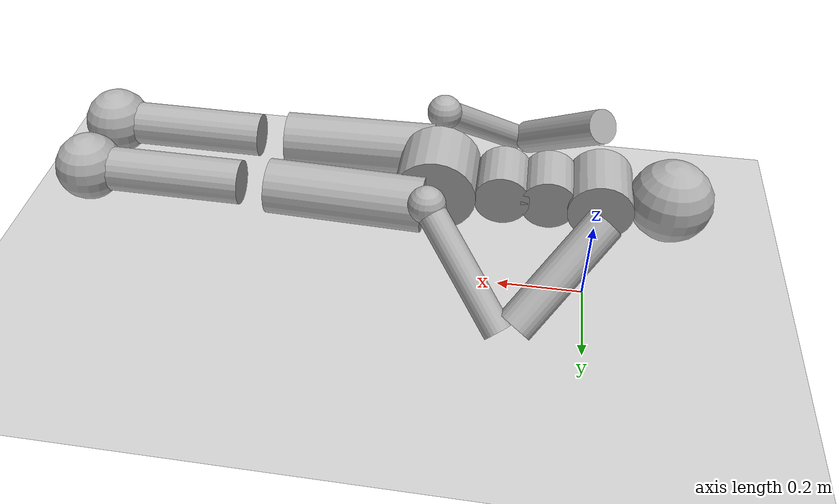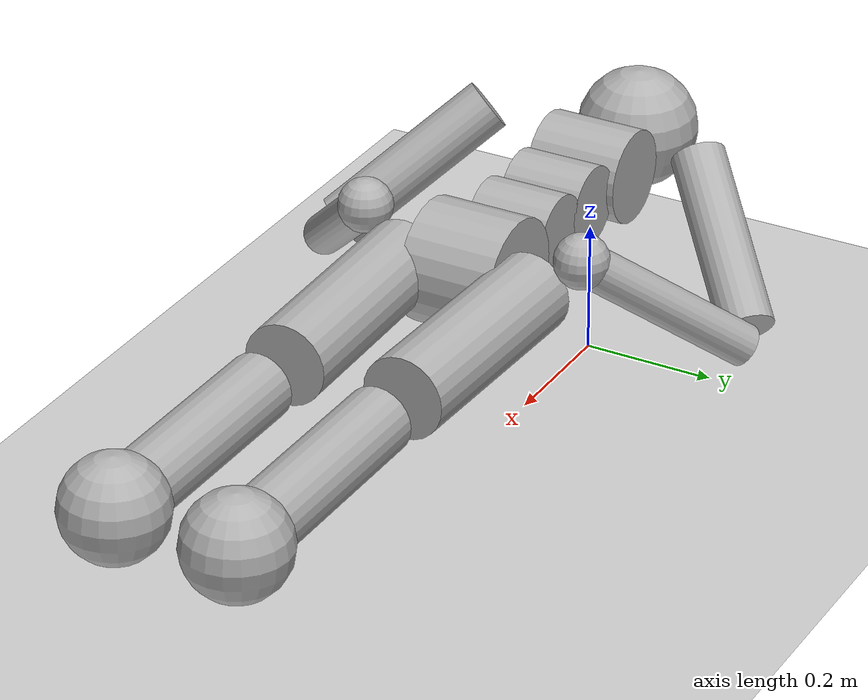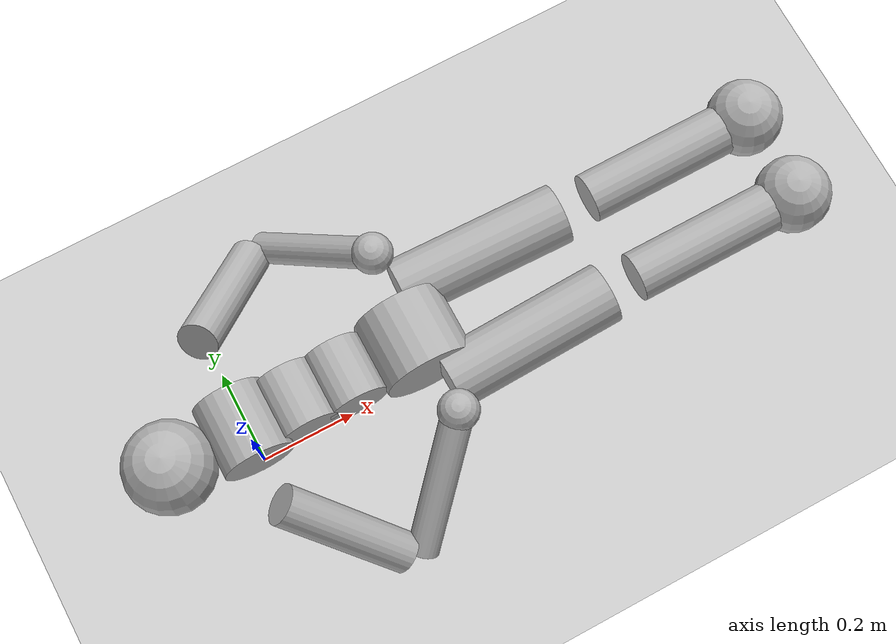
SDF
<?xml version="1.0" ?>
<sdf version="1.8">
  <world name="humanoidstandup">
    <physics name="10ms" type="ignored">
      <max_step_size>0.01</max_step_size>
      <real_time_update_rate>0</real_time_update_rate>
    </physics>
    <plugin filename="gz-sim-physics-system"           name="gz::sim::systems::Physics"/>
    <plugin filename="gz-sim-contact-system"           name="gz::sim::systems::Contact"/>
    <plugin filename="gz-sim-sensors-system"           name="gz::sim::systems::Sensors">
      <render_engine>ogre2</render_engine>
    </plugin>
    <plugin filename="gz-sim-scene-broadcaster-system" name="gz::sim::systems::SceneBroadcaster"/>
    <plugin filename="gz-sim-user-commands-system"     name="gz::sim::systems::UserCommands"/>

    <plugin
      filename="gz-sim-python-system-loader-system"
      name="gz::sim::systems::PythonSystemLoader">
      <module_name>humanoidstandup_learner</module_name>
      <agent_name>humanoidstandup</agent_name>
      <frame_skip>5</frame_skip>
    </plugin>

    <light name="sun" type="directional">
      <cast_shadows>true</cast_shadows>
      <pose>0 0 10 0 0 0</pose>
      <diffuse>0.8 0.8 0.8 1</diffuse>
      <specular>0.2 0.2 0.2 1</specular>
      <direction>-0.5 0.1 -0.9</direction>
    </light>

    <model name="ground_plane">
      <static>true</static>
      <link name="link">
        <collision name="collision">
          <geometry><plane><normal>0 0 1</normal><size>100 100</size></plane></geometry>
        </collision>
        <visual name="visual">
          <geometry><plane><normal>0 0 1</normal><size>100 100</size></plane></geometry>
          <material>
            <ambient>0.8 0.8 0.8 1</ambient>
            <diffuse>0.8 0.8 0.8 1</diffuse>
            <specular>0.8 0.8 0.8 1</specular>
          </material>
        </visual>
      </link>
    </model>

    <model name="humanoidstandup">
      <pose>0 0 0.3 0 0 0</pose>
      <include merge="true">
        <uri>package://gazebo_gymnasium_resources/models/humanoidstandup</uri>
      </include>
    </model>
  </world>
</sdf>

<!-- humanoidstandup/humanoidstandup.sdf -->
<sdf version='1.11'>
  <model name='humanoidstandup'>
    <link name='torso'>
      <inertial>
        <pose>0.109999987650802 0 0 0 0 0</pose>
        <mass>8.9074609999999996</mass>
        <inertia>
          <ixx>0.082250001000000003</ixx>
          <ixy>0</ixy>
          <ixz>0</ixz>
          <iyy>0.1488300130999986</iyy>
          <iyz>0</iyz>
          <izz>0.18297001309999861</izz>
        </inertia>
      </inertial>
      <collision name='torso_collision'>
        <pose>0 0 0 -1.5708 0 0</pose>
        <geometry>
          <cylinder>
            <length>0.14000000000000001</length>
            <radius>0.070000000000000007</radius>
          </cylinder>
        </geometry>
      </collision>
      <visual name='torso_visual'>
        <pose>0 0 0 -1.5708 0 0</pose>
        <geometry>
          <cylinder>
            <length>0.14000000000000001</length>
            <radius>0.070000000000000007</radius>
          </cylinder>
        </geometry>
              <material>
          <ambient>0.5 0.5 0.5 1</ambient>
          <diffuse>0.7 0.7 0.7 1</diffuse>
          <specular>0.1 0.1 0.1 1</specular>
        </material>
      </visual>
      <collision name='torso_collision_1'>
        <pose>-0.14999999999999999 0 0 0 0 0</pose>
        <geometry>
          <sphere>
            <radius>0.089999999999999997</radius>
          </sphere>
        </geometry>
      </collision>
      <visual name='torso_1_visual'>
        <pose>-0.14999999999999999 0 0 0 0 0</pose>
        <geometry>
          <sphere>
            <radius>0.089999999999999997</radius>
          </sphere>
        </geometry>
              <material>
          <ambient>0.5 0.5 0.5 1</ambient>
          <diffuse>0.7 0.7 0.7 1</diffuse>
          <specular>0.1 0.1 0.1 1</specular>
        </material>
      </visual>
      <collision name='torso_collision_2'>
        <pose>0.11 0 0 -1.5708 0 0</pose>
        <geometry>
          <cylinder>
            <length>0.12</length>
            <radius>0.059999999999999998</radius>
          </cylinder>
        </geometry>
      </collision>
      <visual name='torso_2_visual'>
        <pose>0.11 0 0 -1.5708 0 0</pose>
        <geometry>
          <cylinder>
            <length>0.12</length>
            <radius>0.059999999999999998</radius>
          </cylinder>
        </geometry>
              <material>
          <ambient>0.5 0.5 0.5 1</ambient>
          <diffuse>0.7 0.7 0.7 1</diffuse>
          <specular>0.1 0.1 0.1 1</specular>
        </material>
      </visual>
    </link>
    <joint name='abdomen_z' type='revolute'>
      <pose relative_to='torso'>0.20974000000000001 0 0.065000000000000002 0 -0.0039999999999999983 0</pose>
      <parent>torso</parent>
      <child>link1_2</child>
      <axis>
        <xyz>0 0 1</xyz>
        <limit>
          <lower>-0.78539999999999999</lower>
          <upper>0.78539999999999999</upper>
          <effort>0</effort>
          <velocity>0</velocity>
        </limit>
        <dynamics>
          <damping>1</damping>
          <friction>0.0001</friction>
          <spring_reference>0</spring_reference>
          <spring_stiffness>0</spring_stiffness>
        </dynamics>
      </axis>
    </joint>
    <link name='link1_2'>
      <pose relative_to='abdomen_z'>0 0 0 0 0 0</pose>
      <inertial>
        <pose>0 0 0 0 0 0</pose>
        <mass>9.9999999999999995e-07</mass>
        <inertia>
          <ixx>1.0000000000000001e-09</ixx>
          <ixy>0</ixy>
          <ixz>0</ixz>
          <iyy>1.0000000000000001e-09</iyy>
          <iyz>0</iyz>
          <izz>1.0000000000000001e-09</izz>
        </inertia>
      </inertial>
    </link>
    <joint name='abdomen_y' type='revolute'>
      <pose relative_to='link1_2'>0 0 0 0 0 0</pose>
      <parent>link1_2</parent>
      <child>link1_3</child>
      <axis>
        <xyz>0 1 0</xyz>
        <limit>
          <lower>-1.3089999999999999</lower>
          <upper>0.52359999999999995</upper>
          <effort>0</effort>
          <velocity>0</velocity>
        </limit>
        <dynamics>
          <damping>1</damping>
          <friction>0.0001</friction>
          <spring_reference>0</spring_reference>
          <spring_stiffness>0</spring_stiffness>
        </dynamics>
      </axis>
    </joint>
    <link name='link1_3'>
      <pose relative_to='abdomen_y'>0 0 0 0 0 0</pose>
      <inertial>
        <pose>0 0 -0.064999971263745321 0 0 0</pose>
        <mass>2.2619509999999998</mass>
        <inertia>
          <ixx>0.013570005224998131</ixx>
          <ixy>0</ixy>
          <ixz>0</ixz>
          <iyy>0.0054300052249981346</iyy>
          <iyz>0</iyz>
          <izz>0.013570001</izz>
        </inertia>
      </inertial>
      <collision name='link1_3_fixed_joint_lump__lwaist_collision'>
        <pose>0 0 -0.065000000000000002 -1.5708 0 0</pose>
        <geometry>
          <cylinder>
            <length>0.12</length>
            <radius>0.059999999999999998</radius>
          </cylinder>
        </geometry>
      </collision>
      <visual name='link1_3_fixed_joint_lump__lwaist_visual'>
        <pose>0 0 -0.065000000000000002 -1.5708 0 0</pose>
        <geometry>
          <cylinder>
            <length>0.12</length>
            <radius>0.059999999999999998</radius>
          </cylinder>
        </geometry>
              <material>
          <ambient>0.5 0.5 0.5 1</ambient>
          <diffuse>0.7 0.7 0.7 1</diffuse>
          <specular>0.1 0.1 0.1 1</specular>
        </material>
      </visual>
    </link>
    <joint name='abdomen_x' type='revolute'>
      <pose relative_to='link1_3'>0.1646 0 0.035000000000000003 0 -0.0039999999999999983 0</pose>
      <parent>link1_3</parent>
      <child>link1_5</child>
      <axis>
        <xyz>1 0 0</xyz>
        <limit>
          <lower>-0.61087000000000002</lower>
          <upper>0.61087000000000002</upper>
          <effort>0</effort>
          <velocity>0</velocity>
        </limit>
        <dynamics>
          <damping>1</damping>
          <friction>0.0001</friction>
          <spring_reference>0</spring_reference>
          <spring_stiffness>0</spring_stiffness>
        </dynamics>
      </axis>
    </joint>
    <link name='link1_5'>
      <pose relative_to='abdomen_x'>0 0 0 0 0 0</pose>
      <inertial>
        <pose>-0.019999996977112661 0 -0.099999984885563317 0 0 0</pose>
        <mass>6.6161909999999997</mass>
        <inertia>
          <ixx>0.074320010999998479</ixx>
          <ixy>0</ixy>
          <ixz>-1.999999698840127e-09</ixz>
          <iyy>0.035730011399998443</iyy>
          <iyz>0</iyz>
          <izz>0.074320001399999933</izz>
        </inertia>
      </inertial>
      <collision name='link1_5_fixed_joint_lump__pelvis_collision'>
        <pose>-0.02 0 -0.10000000000000001 -1.5708 0 0</pose>
        <geometry>
          <cylinder>
            <length>0.14000000000000001</length>
            <radius>0.089999999999999997</radius>
          </cylinder>
        </geometry>
      </collision>
      <visual name='link1_5_fixed_joint_lump__pelvis_visual'>
        <pose>-0.02 0 -0.10000000000000001 -1.5708 0 0</pose>
        <geometry>
          <cylinder>
            <length>0.14000000000000001</length>
            <radius>0.089999999999999997</radius>
          </cylinder>
        </geometry>
              <material>
          <ambient>0.5 0.5 0.5 1</ambient>
          <diffuse>0.7 0.7 0.7 1</diffuse>
          <specular>0.1 0.1 0.1 1</specular>
        </material>
      </visual>
    </link>
    <joint name='left_hip_x' type='revolute'>
      <pose relative_to='link1_5'>0 0.10000000000000001 -0.10000000000000001 0 0 0</pose>
      <parent>link1_5</parent>
      <child>link1_14</child>
      <axis>
        <xyz>-1 0 0</xyz>
        <limit>
          <lower>-0.43633</lower>
          <upper>0.08727</upper>
          <effort>0</effort>
          <velocity>0</velocity>
        </limit>
        <dynamics>
          <damping>1</damping>
          <friction>0.0001</friction>
          <spring_reference>0</spring_reference>
          <spring_stiffness>0</spring_stiffness>
        </dynamics>
      </axis>
    </joint>
    <link name='link1_14'>
      <pose relative_to='left_hip_x'>0 0 0 0 0 0</pose>
      <inertial>
        <pose>0 0 0 0 0 0</pose>
        <mass>9.9999999999999995e-07</mass>
        <inertia>
          <ixx>1.0000000000000001e-09</ixx>
          <ixy>0</ixy>
          <ixz>0</ixz>
          <iyy>1.0000000000000001e-09</iyy>
          <iyz>0</iyz>
          <izz>1.0000000000000001e-09</izz>
        </inertia>
      </inertial>
    </link>
    <joint name='left_hip_z' type='revolute'>
      <pose relative_to='link1_14'>0 0 0 0 0 0</pose>
      <parent>link1_14</parent>
      <child>link1_15</child>
      <axis>
        <xyz>0 0 -1</xyz>
        <limit>
          <lower>-1.0471999999999999</lower>
          <upper>0.61087000000000002</upper>
          <effort>0</effort>
          <velocity>0</velocity>
        </limit>
        <dynamics>
          <damping>1</damping>
          <friction>0.0001</friction>
          <spring_reference>0</spring_reference>
          <spring_stiffness>0</spring_stiffness>
        </dynamics>
      </axis>
    </joint>
    <link name='link1_15'>
      <pose relative_to='left_hip_z'>0 0 0 0 0 0</pose>
      <inertial>
        <pose>0 0 0 0 0 0</pose>
        <mass>9.9999999999999995e-07</mass>
        <inertia>
          <ixx>1.0000000000000001e-09</ixx>
          <ixy>0</ixy>
          <ixz>0</ixz>
          <iyy>1.0000000000000001e-09</iyy>
          <iyz>0</iyz>
          <izz>1.0000000000000001e-09</izz>
        </inertia>
      </inertial>
    </link>
    <joint name='left_hip_y' type='revolute'>
      <pose relative_to='link1_15'>0 0 0 0 0 0</pose>
      <parent>link1_15</parent>
      <child>link1_16</child>
      <axis>
        <xyz>0 1 0</xyz>
        <limit>
          <lower>-2.0943999999999998</lower>
          <upper>0.34906999999999999</upper>
          <effort>0</effort>
          <velocity>0</velocity>
        </limit>
        <dynamics>
          <damping>1</damping>
          <friction>0.0001</friction>
          <spring_reference>0</spring_reference>
          <spring_stiffness>0</spring_stiffness>
        </dynamics>
      </axis>
    </joint>
    <link name='link1_16'>
      <pose relative_to='left_hip_y'>0 0 0 0 0 0</pose>
      <inertial>
        <pose>0.16999996422371461 -0.0049999989477563112 0 0 0 0</pose>
        <mass>4.7517510000000014</mass>
        <inertia>
          <ixx>0.013460001024999989</ixx>
          <ixy>8.4999982052913481e-10</ixy>
          <ixz>0</ixz>
          <iyy>0.091140029899993896</iyy>
          <iyz>0</iyz>
          <izz>0.092520029924993891</izz>
        </inertia>
      </inertial>
      <collision name='link1_16_fixed_joint_lump__left_thigh_collision'>
        <pose>0.17000000000000001 -0.0050000000000000001 0 1.5708000000000033 1.5413899999999974 1.5414000000000028</pose>
        <geometry>
          <cylinder>
            <length>0.34015000000000001</length>
            <radius>0.059999999999999998</radius>
          </cylinder>
        </geometry>
      </collision>
      <visual name='link1_16_fixed_joint_lump__left_thigh_visual'>
        <pose>0.17000000000000001 -0.0050000000000000001 0 1.5708000000000033 1.5413899999999974 1.5414000000000028</pose>
        <geometry>
          <cylinder>
            <length>0.34015000000000001</length>
            <radius>0.059999999999999998</radius>
          </cylinder>
        </geometry>
              <material>
          <ambient>0.5 0.5 0.5 1</ambient>
          <diffuse>0.7 0.7 0.7 1</diffuse>
          <specular>0.1 0.1 0.1 1</specular>
        </material>
      </visual>
    </link>
    <joint name='left_knee' type='revolute'>
      <pose relative_to='link1_16'>0.40300000000000002 -0.01 0.02 0 0 0</pose>
      <parent>link1_16</parent>
      <child>link1_18</child>
      <axis>
        <xyz>0 -1 0</xyz>
        <limit>
          <lower>-2.7925300000000002</lower>
          <upper>-0.034909999999999997</upper>
          <effort>0</effort>
          <velocity>0</velocity>
        </limit>
        <dynamics>
          <damping>1</damping>
          <friction>0.0001</friction>
          <spring_reference>0</spring_reference>
          <spring_stiffness>0</spring_stiffness>
        </dynamics>
      </axis>
    </joint>
    <link name='link1_18'>
      <pose relative_to='left_knee'>0 0 0 0 0 0</pose>
      <inertial>
        <pose>0.2281431557219108 0 -0.059071590021426743 0 0 0</pose>
        <mass>4.5228510000000002</mass>
        <inertia>
          <ixx>0.02180696615079538</ixx>
          <ixy>0</ixy>
          <ixz>0.02153393679946565</ixz>
          <iyy>0.099044864845473812</iyy>
          <iyz>0</iyz>
          <izz>0.088277899694678474</izz>
        </inertia>
      </inertial>
      <collision name='link1_18_fixed_joint_lump__left_shin_collision'>
        <pose>0.14999999999999999 0 -0.02 0 1.5707963267948966 0</pose>
        <geometry>
          <cylinder>
            <length>0.29999999999999999</length>
            <radius>0.049000000000000002</radius>
          </cylinder>
        </geometry>
      </collision>
      <visual name='link1_18_fixed_joint_lump__left_shin_visual'>
        <pose>0.14999999999999999 0 -0.02 0 1.5707963267948966 0</pose>
        <geometry>
          <cylinder>
            <length>0.29999999999999999</length>
            <radius>0.049000000000000002</radius>
          </cylinder>
        </geometry>
              <material>
          <ambient>0.5 0.5 0.5 1</ambient>
          <diffuse>0.7 0.7 0.7 1</diffuse>
          <specular>0.1 0.1 0.1 1</specular>
        </material>
      </visual>
      <collision name='link1_18_fixed_joint_lump__left_foot_collision_1'>
        <pose>0.34999999999999998 0 -0.02 0 0 0</pose>
        <geometry>
          <sphere>
            <radius>0.074999999999999997</radius>
          </sphere>
        </geometry>
      </collision>
      <visual name='link1_18_fixed_joint_lump__left_foot_1_visual'>
        <pose>0.34999999999999998 0 -0.02 0 0 0</pose>
        <geometry>
          <sphere>
            <radius>0.074999999999999997</radius>
          </sphere>
        </geometry>
              <material>
          <ambient>0.5 0.5 0.5 1</ambient>
          <diffuse>0.7 0.7 0.7 1</diffuse>
          <specular>0.1 0.1 0.1 1</specular>
        </material>
      </visual>
    </link>
    <joint name='right_hip_x' type='revolute'>
      <pose relative_to='link1_5'>0 -0.10000000000000001 -0.10000000000000001 0 0 0</pose>
      <parent>link1_5</parent>
      <child>link1_7</child>
      <axis>
        <xyz>1 0 0</xyz>
        <limit>
          <lower>-0.43633</lower>
          <upper>0.08727</upper>
          <effort>0</effort>
          <velocity>0</velocity>
        </limit>
        <dynamics>
          <damping>1</damping>
          <friction>0.0001</friction>
          <spring_reference>0</spring_reference>
          <spring_stiffness>0</spring_stiffness>
        </dynamics>
      </axis>
    </joint>
    <link name='link1_7'>
      <pose relative_to='right_hip_x'>0 0 0 0 0 0</pose>
      <inertial>
        <pose>0 0 0 0 0 0</pose>
        <mass>9.9999999999999995e-07</mass>
        <inertia>
          <ixx>1.0000000000000001e-09</ixx>
          <ixy>0</ixy>
          <ixz>0</ixz>
          <iyy>1.0000000000000001e-09</iyy>
          <iyz>0</iyz>
          <izz>1.0000000000000001e-09</izz>
        </inertia>
      </inertial>
    </link>
    <joint name='right_hip_z' type='revolute'>
      <pose relative_to='link1_7'>0 0 0 0 0 0</pose>
      <parent>link1_7</parent>
      <child>link1_8</child>
      <axis>
        <xyz>0 0 1</xyz>
        <limit>
          <lower>-1.0471999999999999</lower>
          <upper>0.61087000000000002</upper>
          <effort>0</effort>
          <velocity>0</velocity>
        </limit>
        <dynamics>
          <damping>1</damping>
          <friction>0.0001</friction>
          <spring_reference>0</spring_reference>
          <spring_stiffness>0</spring_stiffness>
        </dynamics>
      </axis>
    </joint>
    <link name='link1_8'>
      <pose relative_to='right_hip_z'>0 0 0 0 0 0</pose>
      <inertial>
        <pose>0 0 0 0 0 0</pose>
        <mass>9.9999999999999995e-07</mass>
        <inertia>
          <ixx>1.0000000000000001e-09</ixx>
          <ixy>0</ixy>
          <ixz>0</ixz>
          <iyy>1.0000000000000001e-09</iyy>
          <iyz>0</iyz>
          <izz>1.0000000000000001e-09</izz>
        </inertia>
      </inertial>
    </link>
    <joint name='right_hip_y' type='revolute'>
      <pose relative_to='link1_8'>0 0 0 0 0 0</pose>
      <parent>link1_8</parent>
      <child>link1_9</child>
      <axis>
        <xyz>0 1 0</xyz>
        <limit>
          <lower>-1.9198599999999999</lower>
          <upper>0.34906999999999999</upper>
          <effort>0</effort>
          <velocity>0</velocity>
        </limit>
        <dynamics>
          <damping>1</damping>
          <friction>0.0001</friction>
          <spring_reference>0</spring_reference>
          <spring_stiffness>0</spring_stiffness>
        </dynamics>
      </axis>
    </joint>
    <link name='link1_9'>
      <pose relative_to='right_hip_y'>0 0 0 0 0 0</pose>
      <inertial>
        <pose>0.16999996422371461 0.0049999989477563112 0 0 0 0</pose>
        <mass>4.7517510000000014</mass>
        <inertia>
          <ixx>0.013460001024999989</ixx>
          <ixy>-8.4999982052913481e-10</ixy>
          <ixz>0</ixz>
          <iyy>0.091140029899993896</iyy>
          <iyz>0</iyz>
          <izz>0.092520029924993891</izz>
        </inertia>
      </inertial>
      <collision name='link1_9_fixed_joint_lump__right_thigh_collision'>
        <pose>0.17000000000000001 0.0050000000000000001 0 -1.5708000000000033 1.5413899999999974 -1.5414000000000028</pose>
        <geometry>
          <cylinder>
            <length>0.34015000000000001</length>
            <radius>0.059999999999999998</radius>
          </cylinder>
        </geometry>
      </collision>
      <visual name='link1_9_fixed_joint_lump__right_thigh_visual'>
        <pose>0.17000000000000001 0.0050000000000000001 0 -1.5708000000000033 1.5413899999999974 -1.5414000000000028</pose>
        <geometry>
          <cylinder>
            <length>0.34015000000000001</length>
            <radius>0.059999999999999998</radius>
          </cylinder>
        </geometry>
              <material>
          <ambient>0.5 0.5 0.5 1</ambient>
          <diffuse>0.7 0.7 0.7 1</diffuse>
          <specular>0.1 0.1 0.1 1</specular>
        </material>
      </visual>
    </link>
    <joint name='right_knee' type='revolute'>
      <pose relative_to='link1_9'>0.40300000000000002 0.01 0.02 0 0 0</pose>
      <parent>link1_9</parent>
      <child>link1_11</child>
      <axis>
        <xyz>0 -1 0</xyz>
        <limit>
          <lower>-2.7925300000000002</lower>
          <upper>-0.034909999999999997</upper>
          <effort>0</effort>
          <velocity>0</velocity>
        </limit>
        <dynamics>
          <damping>1</damping>
          <friction>0.0001</friction>
          <spring_reference>0</spring_reference>
          <spring_stiffness>0</spring_stiffness>
        </dynamics>
      </axis>
    </joint>
    <link name='link1_11'>
      <pose relative_to='right_knee'>0 0 0 0 0 0</pose>
      <inertial>
        <pose>0.2281431557219108 0 -0.059071590021426743 0 0 0</pose>
        <mass>4.5228510000000002</mass>
        <inertia>
          <ixx>0.02180696615079538</ixx>
          <ixy>0</ixy>
          <ixz>0.02153393679946565</ixz>
          <iyy>0.099044864845473812</iyy>
          <iyz>0</iyz>
          <izz>0.088277899694678474</izz>
        </inertia>
      </inertial>
      <collision name='link1_11_fixed_joint_lump__right_shin_collision'>
        <pose>0.14999999999999999 0 -0.02 0 1.5707963267948966 0</pose>
        <geometry>
          <cylinder>
            <length>0.29999999999999999</length>
            <radius>0.049000000000000002</radius>
          </cylinder>
        </geometry>
      </collision>
      <visual name='link1_11_fixed_joint_lump__right_shin_visual'>
        <pose>0.14999999999999999 0 -0.02 0 1.5707963267948966 0</pose>
        <geometry>
          <cylinder>
            <length>0.29999999999999999</length>
            <radius>0.049000000000000002</radius>
          </cylinder>
        </geometry>
              <material>
          <ambient>0.5 0.5 0.5 1</ambient>
          <diffuse>0.7 0.7 0.7 1</diffuse>
          <specular>0.1 0.1 0.1 1</specular>
        </material>
      </visual>
      <collision name='link1_11_fixed_joint_lump__right_foot_collision_1'>
        <pose>0.34999999999999998 0 -0.02 0 0 0</pose>
        <geometry>
          <sphere>
            <radius>0.074999999999999997</radius>
          </sphere>
        </geometry>
      </collision>
      <visual name='link1_11_fixed_joint_lump__right_foot_1_visual'>
        <pose>0.34999999999999998 0 -0.02 0 0 0</pose>
        <geometry>
          <sphere>
            <radius>0.074999999999999997</radius>
          </sphere>
        </geometry>
              <material>
          <ambient>0.5 0.5 0.5 1</ambient>
          <diffuse>0.7 0.7 0.7 1</diffuse>
          <specular>0.1 0.1 0.1 1</specular>
        </material>
      </visual>
    </link>
    <joint name='left_shoulder1' type='revolute'>
      <pose relative_to='torso'>0 0.17000000000000001 0.059999999999999998 0 0 0</pose>
      <parent>torso</parent>
      <child>link1_26</child>
      <axis>
        <xyz>2 -1 1</xyz>
        <limit>
          <lower>-1.0471999999999999</lower>
          <upper>1.48353</upper>
          <effort>0</effort>
          <velocity>0</velocity>
        </limit>
        <dynamics>
          <damping>1</damping>
          <friction>0.0001</friction>
          <spring_reference>0</spring_reference>
          <spring_stiffness>0</spring_stiffness>
        </dynamics>
      </axis>
    </joint>
    <link name='link1_26'>
      <pose relative_to='left_shoulder1'>0 0 0 0 0 0</pose>
      <inertial>
        <pose>0 0 0 0 0 0</pose>
        <mass>9.9999999999999995e-07</mass>
        <inertia>
          <ixx>1.0000000000000001e-09</ixx>
          <ixy>0</ixy>
          <ixz>0</ixz>
          <iyy>1.0000000000000001e-09</iyy>
          <iyz>0</iyz>
          <izz>1.0000000000000001e-09</izz>
        </inertia>
      </inertial>
    </link>
    <joint name='left_shoulder2' type='revolute'>
      <pose relative_to='link1_26'>0 0 0 0 0 0</pose>
      <parent>link1_26</parent>
      <child>link1_27</child>
      <axis>
        <xyz>0 1 1</xyz>
        <limit>
          <lower>-1.0471999999999999</lower>
          <upper>1.48353</upper>
          <effort>0</effort>
          <velocity>0</velocity>
        </limit>
        <dynamics>
          <damping>1</damping>
          <friction>0.0001</friction>
          <spring_reference>0</spring_reference>
          <spring_stiffness>0</spring_stiffness>
        </dynamics>
      </axis>
    </joint>
    <link name='link1_27'>
      <pose relative_to='left_shoulder2'>0 0 0 0 0 0</pose>
      <inertial>
        <pose>0.079999951838591862 0.079999951838591862 -0.079999951838591862 0 0 0</pose>
        <mass>1.661081</mass>
        <inertia>
          <ixx>0.023680013799992291</ixx>
          <ixy>-6.3999961458921506e-09</ixy>
          <ixz>6.3999961458921506e-09</ixz>
          <iyy>0.023680013799992291</iyy>
          <iyz>6.3999961458921506e-09</iyz>
          <izz>0.02267001379999229</izz>
        </inertia>
      </inertial>
      <collision name='link1_27_fixed_joint_lump__left_upper_arm_collision'>
        <pose>0.080000000000000002 0.080000000000000002 -0.080000000000000002 -2.3561899999999998 0.61548000000000003 -1.3089999999999999</pose>
        <geometry>
          <cylinder>
            <length>0.27712999999999999</length>
            <radius>0.040000000000000001</radius>
          </cylinder>
        </geometry>
      </collision>
      <visual name='link1_27_fixed_joint_lump__left_upper_arm_visual'>
        <pose>0.080000000000000002 0.080000000000000002 -0.080000000000000002 -2.3561899999999998 0.61548000000000003 -1.3089999999999999</pose>
        <geometry>
          <cylinder>
            <length>0.27712999999999999</length>
            <radius>0.040000000000000001</radius>
          </cylinder>
        </geometry>
              <material>
          <ambient>0.5 0.5 0.5 1</ambient>
          <diffuse>0.7 0.7 0.7 1</diffuse>
          <specular>0.1 0.1 0.1 1</specular>
        </material>
      </visual>
    </link>
    <joint name='left_elbow' type='revolute'>
      <pose relative_to='link1_27'>0.17999999999999999 0.17999999999999999 -0.17999999999999999 0 0 0</pose>
      <parent>link1_27</parent>
      <child>link1_29</child>
      <axis>
        <xyz>0 -1 -1</xyz>
        <limit>
          <lower>-1.5708</lower>
          <upper>0.87265999999999999</upper>
          <effort>0</effort>
          <velocity>0</velocity>
        </limit>
        <dynamics>
          <damping>1</damping>
          <friction>0.0001</friction>
          <spring_reference>0</spring_reference>
          <spring_stiffness>0</spring_stiffness>
        </dynamics>
      </axis>
    </joint>
    <link name='link1_29'>
      <pose relative_to='left_elbow'>0 0 0 0 0 0</pose>
      <inertial>
        <pose>0 0 0 0 0 0</pose>
        <mass>1.229541</mass>
        <inertia>
          <ixx>0.014190001000000001</ixx>
          <ixy>0</ixy>
          <ixz>0</ixz>
          <iyy>0.014190001000000001</iyy>
          <iyz>0</iyz>
          <izz>0.013740001</izz>
        </inertia>
      </inertial>
      <collision name='link1_29_fixed_joint_lump__left_lower_arm_collision'>
        <pose>0.089999999999999997 -0.089999999999999997 0.089999999999999997 0.78539999999999976 0.61548000000000003 0.26180000000000009</pose>
        <geometry>
          <cylinder>
            <length>0.27712999999999999</length>
            <radius>0.031</radius>
          </cylinder>
        </geometry>
      </collision>
      <visual name='link1_29_fixed_joint_lump__left_lower_arm_visual'>
        <pose>0.089999999999999997 -0.089999999999999997 0.089999999999999997 0.78539999999999976 0.61548000000000003 0.26180000000000009</pose>
        <geometry>
          <cylinder>
            <length>0.27712999999999999</length>
            <radius>0.031</radius>
          </cylinder>
        </geometry>
              <material>
          <ambient>0.5 0.5 0.5 1</ambient>
          <diffuse>0.7 0.7 0.7 1</diffuse>
          <specular>0.1 0.1 0.1 1</specular>
        </material>
      </visual>
      <collision name='link1_29_fixed_joint_lump__left_lower_arm_collision_1'>
        <pose>0.17999999999999999 -0.17999999999999999 0.17999999999999999 0 0 0</pose>
        <geometry>
          <sphere>
            <radius>0.040000000000000001</radius>
          </sphere>
        </geometry>
      </collision>
      <visual name='link1_29_fixed_joint_lump__left_lower_arm_1_visual'>
        <pose>0.17999999999999999 -0.17999999999999999 0.17999999999999999 0 0 0</pose>
        <geometry>
          <sphere>
            <radius>0.040000000000000001</radius>
          </sphere>
        </geometry>
              <material>
          <ambient>0.5 0.5 0.5 1</ambient>
          <diffuse>0.7 0.7 0.7 1</diffuse>
          <specular>0.1 0.1 0.1 1</specular>
        </material>
      </visual>
    </link>
    <joint name='right_shoulder1' type='revolute'>
      <pose relative_to='torso'>0 -0.17000000000000001 0.059999999999999998 0 0 0</pose>
      <parent>torso</parent>
      <child>link1_21</child>
      <axis>
        <xyz>2 1 1</xyz>
        <limit>
          <lower>-1.48353</lower>
          <upper>1.0471999999999999</upper>
          <effort>0</effort>
          <velocity>0</velocity>
        </limit>
        <dynamics>
          <damping>1</damping>
          <friction>0.0001</friction>
          <spring_reference>0</spring_reference>
          <spring_stiffness>0</spring_stiffness>
        </dynamics>
      </axis>
    </joint>
    <link name='link1_21'>
      <pose relative_to='right_shoulder1'>0 0 0 0 0 0</pose>
      <inertial>
        <pose>0 0 0 0 0 0</pose>
        <mass>9.9999999999999995e-07</mass>
        <inertia>
          <ixx>1.0000000000000001e-09</ixx>
          <ixy>0</ixy>
          <ixz>0</ixz>
          <iyy>1.0000000000000001e-09</iyy>
          <iyz>0</iyz>
          <izz>1.0000000000000001e-09</izz>
        </inertia>
      </inertial>
    </link>
    <joint name='right_shoulder2' type='revolute'>
      <pose relative_to='link1_21'>0 0 0 0 0 0</pose>
      <parent>link1_21</parent>
      <child>link1_22</child>
      <axis>
        <xyz>0 -1 1</xyz>
        <limit>
          <lower>-1.48353</lower>
          <upper>1.0471999999999999</upper>
          <effort>0</effort>
          <velocity>0</velocity>
        </limit>
        <dynamics>
          <damping>1</damping>
          <friction>0.0001</friction>
          <spring_reference>0</spring_reference>
          <spring_stiffness>0</spring_stiffness>
        </dynamics>
      </axis>
    </joint>
    <link name='link1_22'>
      <pose relative_to='right_shoulder2'>0 0 0 0 0 0</pose>
      <inertial>
        <pose>0.079999951838591862 -0.079999951838591862 -0.079999951838591862 0 0 0</pose>
        <mass>1.661081</mass>
        <inertia>
          <ixx>0.023680013799992291</ixx>
          <ixy>6.3999961458921506e-09</ixy>
          <ixz>6.3999961458921506e-09</ixz>
          <iyy>0.023680013799992291</iyy>
          <iyz>-6.3999961458921506e-09</iyz>
          <izz>0.02267001379999229</izz>
        </inertia>
      </inertial>
      <collision name='link1_22_fixed_joint_lump__right_upper_arm_collision'>
        <pose>0.080000000000000002 -0.080000000000000002 -0.080000000000000002 2.3561899999999998 0.61548000000000003 1.3089999999999999</pose>
        <geometry>
          <cylinder>
            <length>0.27712999999999999</length>
            <radius>0.040000000000000001</radius>
          </cylinder>
        </geometry>
      </collision>
      <visual name='link1_22_fixed_joint_lump__right_upper_arm_visual'>
        <pose>0.080000000000000002 -0.080000000000000002 -0.080000000000000002 2.3561899999999998 0.61548000000000003 1.3089999999999999</pose>
        <geometry>
          <cylinder>
            <length>0.27712999999999999</length>
            <radius>0.040000000000000001</radius>
          </cylinder>
        </geometry>
              <material>
          <ambient>0.5 0.5 0.5 1</ambient>
          <diffuse>0.7 0.7 0.7 1</diffuse>
          <specular>0.1 0.1 0.1 1</specular>
        </material>
      </visual>
    </link>
    <joint name='right_elbow' type='revolute'>
      <pose relative_to='link1_22'>0.17999999999999999 -0.17999999999999999 -0.17999999999999999 0 0 0</pose>
      <parent>link1_22</parent>
      <child>link1_24</child>
      <axis>
        <xyz>0 -1 1</xyz>
        <limit>
          <lower>-1.5708</lower>
          <upper>0.87265999999999999</upper>
          <effort>0</effort>
          <velocity>0</velocity>
        </limit>
        <dynamics>
          <damping>1</damping>
          <friction>0.0001</friction>
          <spring_reference>0</spring_reference>
          <spring_stiffness>0</spring_stiffness>
        </dynamics>
      </axis>
    </joint>
    <link name='link1_24'>
      <pose relative_to='right_elbow'>0 0 0 0 0 0</pose>
      <inertial>
        <pose>0 0 0 0 0 0</pose>
        <mass>1.229541</mass>
        <inertia>
          <ixx>0.014190001000000001</ixx>
          <ixy>0</ixy>
          <ixz>0</ixz>
          <iyy>0.014190001000000001</iyy>
          <iyz>0</iyz>
          <izz>0.013740001</izz>
        </inertia>
      </inertial>
      <collision name='link1_24_fixed_joint_lump__right_lower_arm_collision'>
        <pose>0.089999999999999997 0.089999999999999997 0.089999999999999997 -0.78539999999999976 0.61548000000000003 -0.26180000000000009</pose>
        <geometry>
          <cylinder>
            <length>0.27712999999999999</length>
            <radius>0.031</radius>
          </cylinder>
        </geometry>
      </collision>
      <visual name='link1_24_fixed_joint_lump__right_lower_arm_visual'>
        <pose>0.089999999999999997 0.089999999999999997 0.089999999999999997 -0.78539999999999976 0.61548000000000003 -0.26180000000000009</pose>
        <geometry>
          <cylinder>
            <length>0.27712999999999999</length>
            <radius>0.031</radius>
          </cylinder>
        </geometry>
              <material>
          <ambient>0.5 0.5 0.5 1</ambient>
          <diffuse>0.7 0.7 0.7 1</diffuse>
          <specular>0.1 0.1 0.1 1</specular>
        </material>
      </visual>
      <collision name='link1_24_fixed_joint_lump__right_lower_arm_collision_1'>
        <pose>0.17999999999999999 0.17999999999999999 0.17999999999999999 0 0 0</pose>
        <geometry>
          <sphere>
            <radius>0.040000000000000001</radius>
          </sphere>
        </geometry>
      </collision>
      <visual name='link1_24_fixed_joint_lump__right_lower_arm_1_visual'>
        <pose>0.17999999999999999 0.17999999999999999 0.17999999999999999 0 0 0</pose>
        <geometry>
          <sphere>
            <radius>0.040000000000000001</radius>
          </sphere>
        </geometry>
              <material>
          <ambient>0.5 0.5 0.5 1</ambient>
          <diffuse>0.7 0.7 0.7 1</diffuse>
          <specular>0.1 0.1 0.1 1</specular>
        </material>
      </visual>
    </link>

</model>
</sdf>
